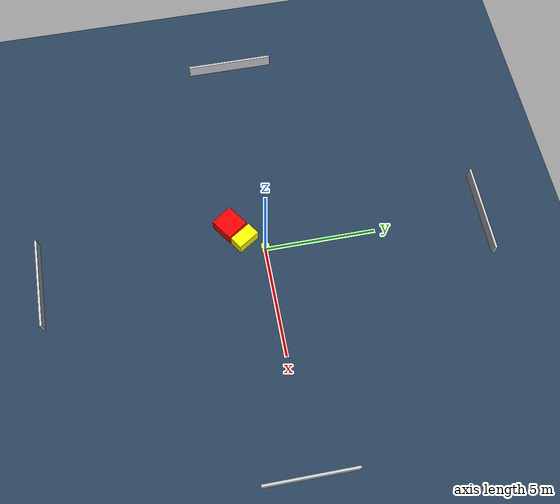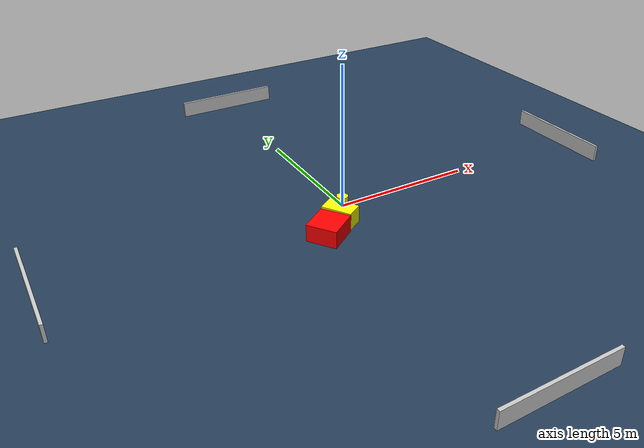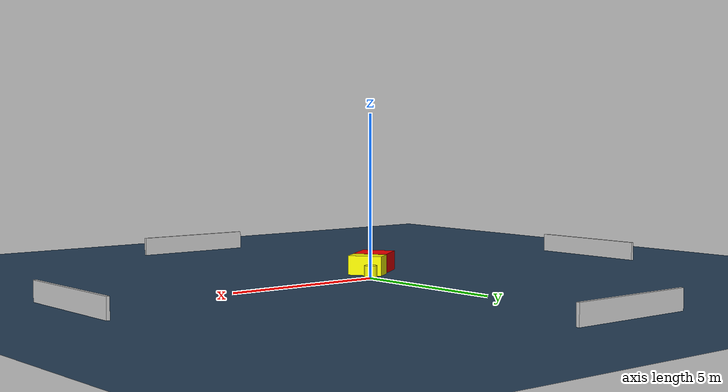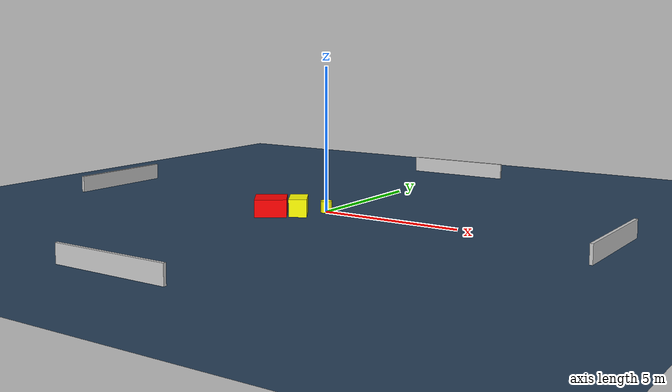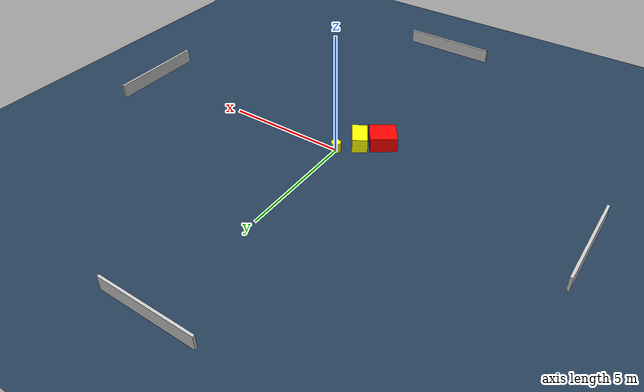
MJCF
<?xml version="1.0" ?>
<mujoco model="generated_environment">
  <option timestep="0.01" integrator="RK4" cone="elliptic"/>
  <default>
    <geom density="1"/>
  </default>
  <asset>
    <texture builtin="gradient" height="3072" name="skybox" rgb1="0.3 0.5 0.7" rgb2="0 0 0" type="skybox" width="512"/>
    <texture builtin="checker" height="300" name="groundplane" rgb1="0.2 0.3 0.4" rgb2="0.1 0.2 0.3" type="2d" width="300"/>
    <material name="groundplane" reflectance="0.2" texrepeat="5 5" texture="groundplane"/>
  </asset>
  <worldbody>
    <light dir="0 0 -1" directional="true" pos="0 0 1.5"/>
    <geom condim="3" friction="0.5 0.005 0.001" material="groundplane" name="floor" pos="0 0 0" size="0 0 0.05" type="plane"/>
    <body name="walls">
      <geom name="wall_1" condim="4" pos="-10.0 0.0 0.3" rgba="0.800000011920929 0.800000011920929 0.800000011920929 1.0" size="0.05 2.0 0.3" type="box"/>
      <geom name="wall_2" condim="4" pos="10.0 0.0 0.3" rgba="0.800000011920929 0.800000011920929 0.800000011920929 1.0" size="0.05 2.0 0.3" type="box"/>
      <geom name="wall_3" condim="4" pos="0.0 -10.0 0.3" rgba="0.800000011920929 0.800000011920929 0.800000011920929 1.0" size="2.0 0.05 0.3" type="box"/>
      <geom name="wall_4" condim="4" pos="0.0 10.0 0.3" rgba="0.800000011920929 0.800000011920929 0.800000011920929 1.0" size="2.0 0.05 0.3" type="box"/>
    </body>
    <body name="robot">
      <joint name="joint_x" type="slide" pos="0 0 0" axis="1 0 0"/>
      <joint name="joint_y" type="slide" pos="0 0 0" axis="0 1 0"/>
      <geom name="robot" type="cylinder" pos="0.0 0.0 0.2" size="0.2 0.2 0.0" mass="5.0" friction="1.0 0.005 0.0001" condim="4" rgba="1.0 1.0 0.0 1.0"/>
    </body>
    <body name="obstacle_1_movable">
      <geom name="obstacle_1_movable" condim="4" pos="-0.5760636478120011 -0.836742484485423 0.3" euler="0 0 302.610241524818" friction="0.0 0.005 0.001" rgba="1.0 1.0 0.0 1.0" size="0.5343927793247134 0.30683851665940015 0.3" type="box" mass="0.1"/>
      <joint type="free"/>
    </body>
    <body name="obstacle_2_static">
      <geom name="obstacle_2_static" condim="4" pos="-1.3248480274320258 -1.3917798890257125 0.3" euler="0 0 304.94750830783573" friction="0.0 0.005 0.001" rgba="1.0 0.0 0.0 1.0" size="0.5246975550462323 0.543005110107833 0.3" type="box"/>
    </body>
  </worldbody>
  <actuator>
    <motor name="actuator_x" joint="joint_x" gear="1" ctrlrange="-1 1"/>
    <motor name="actuator_y" joint="joint_y" gear="1" ctrlrange="-1 1"/>
  </actuator>
</mujoco>
